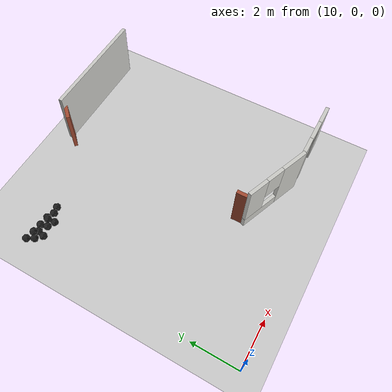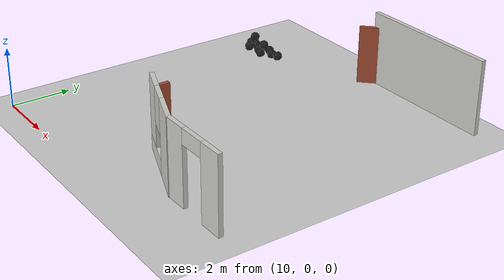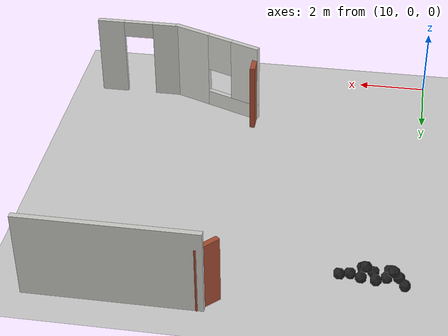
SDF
<sdf version="1.7">
 <world name="default">
  <model name="ground_plane">
   <static>1</static>
   <link name="link">
    <collision name="collision">
     <geometry><plane><normal>0 0 1</normal><size>100 100</size></plane></geometry>
     <surface><friction><ode><mu>100</mu><mu2>50</mu2></ode></friction></surface>
    </collision>
    <visual name="visual">
     <cast_shadows>0</cast_shadows>
     <geometry><plane><normal>0 0 1</normal><size>100 100</size></plane></geometry>
     <material>
      <script><uri>file://media/materials/scripts/gazebo.material</uri><name>Gazebo/Grey</name></script>
     </material>
    </visual>
   </link>
  </model>
  <model name="haoduomiantiaa_27">
   <link name="link_0">
    <inertial>
     <mass>0.2</mass>
     <inertia>
      <ixx>0.166667</ixx>
      <ixy>0</ixy>
      <ixz>0</ixz>
      <iyy>0.166667</iyy>
      <iyz>0</iyz>
      <izz>0.166667</izz>
     </inertia>
    </inertial>
    <visual name="visual">
     <geometry>
      <mesh>
       <uri>/home/lihaoyang/catkin_ws/src/pudong_gazebo/world/stl/haoduomianti.stl</uri>
       <scale>1 1 1</scale>
      </mesh>
     </geometry>
     <material>
      <lighting>1</lighting>
      <script><uri>file://media/materials/scripts/gazebo.material</uri><name>Gazebo/Black</name></script>
      <shader type="pixel"><normal_map>__default__</normal_map></shader>
      <ambient>0.3 0.3 0.3 1</ambient>
      <diffuse>0.7 0.7 0.7 1</diffuse>
      <specular>0.01 0.01 0.01 1</specular>
      <emissive>0 0 0 1</emissive>
     </material>
    </visual>
    <collision name="collision">
     <geometry>
      <mesh>
       <uri>/home/lihaoyang/catkin_ws/src/pudong_gazebo/world/stl/haoduomianti.stl</uri>
       <scale>1 1 1</scale>
      </mesh>
     </geometry>
     <surface>
      <friction>
       <ode><mu>1</mu><mu2>1</mu2><fdir1>0 0 0</fdir1><slip1>0</slip1><slip2>0</slip2></ode>
       <torsional>
        <coefficient>1</coefficient>
        <patch_radius>0</patch_radius>
        <surface_radius>0</surface_radius>
        <use_patch_radius>1</use_patch_radius>
        <ode><slip>0</slip></ode>
       </torsional>
      </friction>
      <bounce><restitution_coefficient>0</restitution_coefficient><threshold>1e+06</threshold></bounce>
      <contact>
       <collide_without_contact>0</collide_without_contact>
       <collide_without_contact_bitmask>1</collide_without_contact_bitmask>
       <collide_bitmask>1</collide_bitmask>
       <ode>
        <soft_cfm>0</soft_cfm>
        <soft_erp>0.2</soft_erp>
        <kp>1e+13</kp>
        <kd>1</kd>
        <max_vel>0.01</max_vel>
        <min_depth>0</min_depth>
       </ode>
       <bullet>
        <split_impulse>1</split_impulse>
        <split_impulse_penetration_threshold>-0.01</split_impulse_penetration_threshold>
        <soft_cfm>0</soft_cfm>
        <soft_erp>0.2</soft_erp>
        <kp>1e+13</kp>
        <kd>1</kd>
       </bullet>
      </contact>
     </surface>
    </collision>
   </link>
   <static>0</static>
   <pose>11.9512 9.19481 -0.115514 0.785343 -0.615512 -0.39803</pose>
  </model>
  <model name="haoduomiantiaa_36">
   <link name="link_0">
    <inertial>
     <mass>0.2</mass>
     <inertia>
      <ixx>0.166667</ixx>
      <ixy>0</ixy>
      <ixz>0</ixz>
      <iyy>0.166667</iyy>
      <iyz>0</iyz>
      <izz>0.166667</izz>
     </inertia>
    </inertial>
    <visual name="visual">
     <geometry>
      <mesh>
       <uri>/home/lihaoyang/catkin_ws/src/pudong_gazebo/world/stl/haoduomianti.stl</uri>
       <scale>1 1 1</scale>
      </mesh>
     </geometry>
     <material>
      <lighting>1</lighting>
      <script><uri>file://media/materials/scripts/gazebo.material</uri><name>Gazebo/Black</name></script>
      <shader type="pixel"><normal_map>__default__</normal_map></shader>
      <ambient>0.3 0.3 0.3 1</ambient>
      <diffuse>0.7 0.7 0.7 1</diffuse>
      <specular>0.01 0.01 0.01 1</specular>
      <emissive>0 0 0 1</emissive>
     </material>
    </visual>
    <collision name="collision">
     <geometry>
      <mesh>
       <uri>/home/lihaoyang/catkin_ws/src/pudong_gazebo/world/stl/haoduomianti.stl</uri>
       <scale>1 1 1</scale>
      </mesh>
     </geometry>
     <surface>
      <friction>
       <ode><mu>1</mu><mu2>1</mu2><fdir1>0 0 0</fdir1><slip1>0</slip1><slip2>0</slip2></ode>
       <torsional>
        <coefficient>1</coefficient>
        <patch_radius>0</patch_radius>
        <surface_radius>0</surface_radius>
        <use_patch_radius>1</use_patch_radius>
        <ode><slip>0</slip></ode>
       </torsional>
      </friction>
      <bounce><restitution_coefficient>0</restitution_coefficient><threshold>1e+06</threshold></bounce>
      <contact>
       <collide_without_contact>0</collide_without_contact>
       <collide_without_contact_bitmask>1</collide_without_contact_bitmask>
       <collide_bitmask>1</collide_bitmask>
       <ode>
        <soft_cfm>0</soft_cfm>
        <soft_erp>0.2</soft_erp>
        <kp>1e+13</kp>
        <kd>1</kd>
        <max_vel>0.01</max_vel>
        <min_depth>0</min_depth>
       </ode>
       <bullet>
        <split_impulse>1</split_impulse>
        <split_impulse_penetration_threshold>-0.01</split_impulse_penetration_threshold>
        <soft_cfm>0</soft_cfm>
        <soft_erp>0.2</soft_erp>
        <kp>1e+13</kp>
        <kd>1</kd>
       </bullet>
      </contact>
     </surface>
    </collision>
   </link>
   <static>0</static>
   <pose>11.3353 9.1112 0.110979 0.832679 -0.391683 -2.45242</pose>
  </model>
  <model name="haoduomiantiaa_40">
   <link name="link_0">
    <inertial>
     <mass>0.2</mass>
     <inertia>
      <ixx>0.166667</ixx>
      <ixy>0</ixy>
      <ixz>0</ixz>
      <iyy>0.166667</iyy>
      <iyz>0</iyz>
      <izz>0.166667</izz>
     </inertia>
    </inertial>
    <visual name="visual">
     <geometry>
      <mesh>
       <uri>/home/lihaoyang/catkin_ws/src/pudong_gazebo/world/stl/haoduomianti.stl</uri>
       <scale>1 1 1</scale>
      </mesh>
     </geometry>
     <material>
      <lighting>1</lighting>
      <script><uri>file://media/materials/scripts/gazebo.material</uri><name>Gazebo/Black</name></script>
      <shader type="pixel"><normal_map>__default__</normal_map></shader>
      <ambient>0.3 0.3 0.3 1</ambient>
      <diffuse>0.7 0.7 0.7 1</diffuse>
      <specular>0.01 0.01 0.01 1</specular>
      <emissive>0 0 0 1</emissive>
     </material>
    </visual>
    <collision name="collision">
     <geometry>
      <mesh>
       <uri>/home/lihaoyang/catkin_ws/src/pudong_gazebo/world/stl/haoduomianti.stl</uri>
       <scale>1 1 1</scale>
      </mesh>
     </geometry>
     <surface>
      <friction>
       <ode><mu>1</mu><mu2>1</mu2><fdir1>0 0 0</fdir1><slip1>0</slip1><slip2>0</slip2></ode>
       <torsional>
        <coefficient>1</coefficient>
        <patch_radius>0</patch_radius>
        <surface_radius>0</surface_radius>
        <use_patch_radius>1</use_patch_radius>
        <ode><slip>0</slip></ode>
       </torsional>
      </friction>
      <bounce><restitution_coefficient>0</restitution_coefficient><threshold>1e+06</threshold></bounce>
      <contact>
       <collide_without_contact>0</collide_without_contact>
       <collide_without_contact_bitmask>1</collide_without_contact_bitmask>
       <collide_bitmask>1</collide_bitmask>
       <ode>
        <soft_cfm>0</soft_cfm>
        <soft_erp>0.2</soft_erp>
        <kp>1e+13</kp>
        <kd>1</kd>
        <max_vel>0.01</max_vel>
        <min_depth>0</min_depth>
       </ode>
       <bullet>
        <split_impulse>1</split_impulse>
        <split_impulse_penetration_threshold>-0.01</split_impulse_penetration_threshold>
        <soft_cfm>0</soft_cfm>
        <soft_erp>0.2</soft_erp>
        <kp>1e+13</kp>
        <kd>1</kd>
       </bullet>
      </contact>
     </surface>
    </collision>
   </link>
   <static>0</static>
   <pose>10.4197 9.12789 -0.115437 0.785402 -0.614458 0.79415</pose>
  </model>
  <model name="haoduomiantiaa_41">
   <link name="link_0">
    <inertial>
     <mass>0.2</mass>
     <inertia>
      <ixx>0.166667</ixx>
      <ixy>0</ixy>
      <ixz>0</ixz>
      <iyy>0.166667</iyy>
      <iyz>0</iyz>
      <izz>0.166667</izz>
     </inertia>
    </inertial>
    <visual name="visual">
     <geometry>
      <mesh>
       <uri>/home/lihaoyang/catkin_ws/src/pudong_gazebo/world/stl/haoduomianti.stl</uri>
       <scale>1 1 1</scale>
      </mesh>
     </geometry>
     <material>
      <lighting>1</lighting>
      <script><uri>file://media/materials/scripts/gazebo.material</uri><name>Gazebo/Black</name></script>
      <shader type="pixel"><normal_map>__default__</normal_map></shader>
      <ambient>0.3 0.3 0.3 1</ambient>
      <diffuse>0.7 0.7 0.7 1</diffuse>
      <specular>0.01 0.01 0.01 1</specular>
      <emissive>0 0 0 1</emissive>
     </material>
    </visual>
    <collision name="collision">
     <geometry>
      <mesh>
       <uri>/home/lihaoyang/catkin_ws/src/pudong_gazebo/world/stl/haoduomianti.stl</uri>
       <scale>1 1 1</scale>
      </mesh>
     </geometry>
     <surface>
      <friction>
       <ode><mu>1</mu><mu2>1</mu2><fdir1>0 0 0</fdir1><slip1>0</slip1><slip2>0</slip2></ode>
       <torsional>
        <coefficient>1</coefficient>
        <patch_radius>0</patch_radius>
        <surface_radius>0</surface_radius>
        <use_patch_radius>1</use_patch_radius>
        <ode><slip>0</slip></ode>
       </torsional>
      </friction>
      <bounce><restitution_coefficient>0</restitution_coefficient><threshold>1e+06</threshold></bounce>
      <contact>
       <collide_without_contact>0</collide_without_contact>
       <collide_without_contact_bitmask>1</collide_without_contact_bitmask>
       <collide_bitmask>1</collide_bitmask>
       <ode>
        <soft_cfm>0</soft_cfm>
        <soft_erp>0.2</soft_erp>
        <kp>1e+13</kp>
        <kd>1</kd>
        <max_vel>0.01</max_vel>
        <min_depth>0</min_depth>
       </ode>
       <bullet>
        <split_impulse>1</split_impulse>
        <split_impulse_penetration_threshold>-0.01</split_impulse_penetration_threshold>
        <soft_cfm>0</soft_cfm>
        <soft_erp>0.2</soft_erp>
        <kp>1e+13</kp>
        <kd>1</kd>
       </bullet>
      </contact>
     </surface>
    </collision>
   </link>
   <static>0</static>
   <pose>11.0076 9.2952 -0.124232 0.783951 -0.615619 -2.4835</pose>
  </model>
  <model name="haoduomiantiaa_45">
   <link name="link_0">
    <inertial>
     <mass>0.2</mass>
     <inertia>
      <ixx>0.166667</ixx>
      <ixy>0</ixy>
      <ixz>0</ixz>
      <iyy>0.166667</iyy>
      <iyz>0</iyz>
      <izz>0.166667</izz>
     </inertia>
    </inertial>
    <visual name="visual">
     <geometry>
      <mesh>
       <uri>/home/lihaoyang/catkin_ws/src/pudong_gazebo/world/stl/haoduomianti.stl</uri>
       <scale>1 1 1</scale>
      </mesh>
     </geometry>
     <material>
      <lighting>1</lighting>
      <script><uri>file://media/materials/scripts/gazebo.material</uri><name>Gazebo/Black</name></script>
      <shader type="pixel"><normal_map>__default__</normal_map></shader>
      <ambient>0.3 0.3 0.3 1</ambient>
      <diffuse>0.7 0.7 0.7 1</diffuse>
      <specular>0.01 0.01 0.01 1</specular>
      <emissive>0 0 0 1</emissive>
     </material>
    </visual>
    <collision name="collision">
     <geometry>
      <mesh>
       <uri>/home/lihaoyang/catkin_ws/src/pudong_gazebo/world/stl/haoduomianti.stl</uri>
       <scale>1 1 1</scale>
      </mesh>
     </geometry>
     <surface>
      <friction>
       <ode><mu>1</mu><mu2>1</mu2><fdir1>0 0 0</fdir1><slip1>0</slip1><slip2>0</slip2></ode>
       <torsional>
        <coefficient>1</coefficient>
        <patch_radius>0</patch_radius>
        <surface_radius>0</surface_radius>
        <use_patch_radius>1</use_patch_radius>
        <ode><slip>0</slip></ode>
       </torsional>
      </friction>
      <bounce><restitution_coefficient>0</restitution_coefficient><threshold>1e+06</threshold></bounce>
      <contact>
       <collide_without_contact>0</collide_without_contact>
       <collide_without_contact_bitmask>1</collide_without_contact_bitmask>
       <collide_bitmask>1</collide_bitmask>
       <ode>
        <soft_cfm>0</soft_cfm>
        <soft_erp>0.2</soft_erp>
        <kp>1e+13</kp>
        <kd>1</kd>
        <max_vel>0.01</max_vel>
        <min_depth>0</min_depth>
       </ode>
       <bullet>
        <split_impulse>1</split_impulse>
        <split_impulse_penetration_threshold>-0.01</split_impulse_penetration_threshold>
        <soft_cfm>0</soft_cfm>
        <soft_erp>0.2</soft_erp>
        <kp>1e+13</kp>
        <kd>1</kd>
       </bullet>
      </contact>
     </surface>
    </collision>
   </link>
   <static>0</static>
   <pose>10.7345 9.17357 -0.115514 0.785402 -0.615465 1.6502</pose>
  </model>
  <model name="haoduomiantiaa_47">
   <link name="link_0">
    <inertial>
     <mass>0.2</mass>
     <inertia>
      <ixx>0.166667</ixx>
      <ixy>0</ixy>
      <ixz>0</ixz>
      <iyy>0.166667</iyy>
      <iyz>0</iyz>
      <izz>0.166667</izz>
     </inertia>
    </inertial>
    <visual name="visual">
     <geometry>
      <mesh>
       <uri>/home/lihaoyang/catkin_ws/src/pudong_gazebo/world/stl/haoduomianti.stl</uri>
       <scale>1 1 1</scale>
      </mesh>
     </geometry>
     <material>
      <lighting>1</lighting>
      <script><uri>file://media/materials/scripts/gazebo.material</uri><name>Gazebo/Black</name></script>
      <shader type="pixel"><normal_map>__default__</normal_map></shader>
      <ambient>0.3 0.3 0.3 1</ambient>
      <diffuse>0.7 0.7 0.7 1</diffuse>
      <specular>0.01 0.01 0.01 1</specular>
      <emissive>0 0 0 1</emissive>
     </material>
    </visual>
    <collision name="collision">
     <geometry>
      <mesh>
       <uri>/home/lihaoyang/catkin_ws/src/pudong_gazebo/world/stl/haoduomianti.stl</uri>
       <scale>1 1 1</scale>
      </mesh>
     </geometry>
     <surface>
      <friction>
       <ode><mu>1</mu><mu2>1</mu2><fdir1>0 0 0</fdir1><slip1>0</slip1><slip2>0</slip2></ode>
       <torsional>
        <coefficient>1</coefficient>
        <patch_radius>0</patch_radius>
        <surface_radius>0</surface_radius>
        <use_patch_radius>1</use_patch_radius>
        <ode><slip>0</slip></ode>
       </torsional>
      </friction>
      <bounce><restitution_coefficient>0</restitution_coefficient><threshold>1e+06</threshold></bounce>
      <contact>
       <collide_without_contact>0</collide_without_contact>
       <collide_without_contact_bitmask>1</collide_without_contact_bitmask>
       <collide_bitmask>1</collide_bitmask>
       <ode>
        <soft_cfm>0</soft_cfm>
        <soft_erp>0.2</soft_erp>
        <kp>1e+13</kp>
        <kd>1</kd>
        <max_vel>0.01</max_vel>
        <min_depth>0</min_depth>
       </ode>
       <bullet>
        <split_impulse>1</split_impulse>
        <split_impulse_penetration_threshold>-0.01</split_impulse_penetration_threshold>
        <soft_cfm>0</soft_cfm>
        <soft_erp>0.2</soft_erp>
        <kp>1e+13</kp>
        <kd>1</kd>
       </bullet>
      </contact>
     </surface>
    </collision>
   </link>
   <static>0</static>
   <pose>11.675 9.13589 -0.116135 0.786034 -0.614802 -0.398273</pose>
  </model>
  <model name="haoduomiantiaa_71">
   <link name="link_0">
    <inertial>
     <mass>0.2</mass>
     <inertia>
      <ixx>0.166667</ixx>
      <ixy>0</ixy>
      <ixz>0</ixz>
      <iyy>0.166667</iyy>
      <iyz>0</iyz>
      <izz>0.166667</izz>
     </inertia>
    </inertial>
    <visual name="visual">
     <geometry>
      <mesh>
       <uri>/home/lihaoyang/catkin_ws/src/pudong_gazebo/world/stl/haoduomianti.stl</uri>
       <scale>1 1 1</scale>
      </mesh>
     </geometry>
     <material>
      <lighting>1</lighting>
      <script><uri>file://media/materials/scripts/gazebo.material</uri><name>Gazebo/Black</name></script>
      <shader type="pixel"><normal_map>__default__</normal_map></shader>
      <ambient>0.3 0.3 0.3 1</ambient>
      <diffuse>0.7 0.7 0.7 1</diffuse>
      <specular>0.01 0.01 0.01 1</specular>
      <emissive>0 0 0 1</emissive>
     </material>
    </visual>
    <collision name="collision">
     <geometry>
      <mesh>
       <uri>/home/lihaoyang/catkin_ws/src/pudong_gazebo/world/stl/haoduomianti.stl</uri>
       <scale>1 1 1</scale>
      </mesh>
     </geometry>
     <surface>
      <friction>
       <ode><mu>1</mu><mu2>1</mu2><fdir1>0 0 0</fdir1><slip1>0</slip1><slip2>0</slip2></ode>
       <torsional>
        <coefficient>1</coefficient>
        <patch_radius>0</patch_radius>
        <surface_radius>0</surface_radius>
        <use_patch_radius>1</use_patch_radius>
        <ode><slip>0</slip></ode>
       </torsional>
      </friction>
      <bounce><restitution_coefficient>0</restitution_coefficient><threshold>1e+06</threshold></bounce>
      <contact>
       <collide_without_contact>0</collide_without_contact>
       <collide_without_contact_bitmask>1</collide_without_contact_bitmask>
       <collide_bitmask>1</collide_bitmask>
       <ode>
        <soft_cfm>0</soft_cfm>
        <soft_erp>0.2</soft_erp>
        <kp>1e+13</kp>
        <kd>1</kd>
        <max_vel>0.01</max_vel>
        <min_depth>0</min_depth>
       </ode>
       <bullet>
        <split_impulse>1</split_impulse>
        <split_impulse_penetration_threshold>-0.01</split_impulse_penetration_threshold>
        <soft_cfm>0</soft_cfm>
        <soft_erp>0.2</soft_erp>
        <kp>1e+13</kp>
        <kd>1</kd>
       </bullet>
      </contact>
     </surface>
    </collision>
   </link>
   <static>0</static>
   <pose>10.5878 9.19495 0.142271 0.666379 -0.617937 0.981094</pose>
  </model>
  <model name="haoduomiantiaa_74">
   <link name="link_0">
    <inertial>
     <mass>0.2</mass>
     <inertia>
      <ixx>0.166667</ixx>
      <ixy>0</ixy>
      <ixz>0</ixz>
      <iyy>0.166667</iyy>
      <iyz>0</iyz>
      <izz>0.166667</izz>
     </inertia>
    </inertial>
    <visual name="visual">
     <geometry>
      <mesh>
       <uri>/home/lihaoyang/catkin_ws/src/pudong_gazebo/world/stl/haoduomianti.stl</uri>
       <scale>1 1 1</scale>
      </mesh>
     </geometry>
     <material>
      <lighting>1</lighting>
      <script><uri>file://media/materials/scripts/gazebo.material</uri><name>Gazebo/Black</name></script>
      <shader type="pixel"><normal_map>__default__</normal_map></shader>
      <ambient>0.3 0.3 0.3 1</ambient>
      <diffuse>0.7 0.7 0.7 1</diffuse>
      <specular>0.01 0.01 0.01 1</specular>
      <emissive>0 0 0 1</emissive>
     </material>
    </visual>
    <collision name="collision">
     <geometry>
      <mesh>
       <uri>/home/lihaoyang/catkin_ws/src/pudong_gazebo/world/stl/haoduomianti.stl</uri>
       <scale>1 1 1</scale>
      </mesh>
     </geometry>
     <surface>
      <friction>
       <ode><mu>1</mu><mu2>1</mu2><fdir1>0 0 0</fdir1><slip1>0</slip1><slip2>0</slip2></ode>
       <torsional>
        <coefficient>1</coefficient>
        <patch_radius>0</patch_radius>
        <surface_radius>0</surface_radius>
        <use_patch_radius>1</use_patch_radius>
        <ode><slip>0</slip></ode>
       </torsional>
      </friction>
      <bounce><restitution_coefficient>0</restitution_coefficient><threshold>1e+06</threshold></bounce>
      <contact>
       <collide_without_contact>0</collide_without_contact>
       <collide_without_contact_bitmask>1</collide_without_contact_bitmask>
       <collide_bitmask>1</collide_bitmask>
       <ode>
        <soft_cfm>0</soft_cfm>
        <soft_erp>0.2</soft_erp>
        <kp>1e+13</kp>
        <kd>1</kd>
        <max_vel>0.01</max_vel>
        <min_depth>0</min_depth>
       </ode>
       <bullet>
        <split_impulse>1</split_impulse>
        <split_impulse_penetration_threshold>-0.01</split_impulse_penetration_threshold>
        <soft_cfm>0</soft_cfm>
        <soft_erp>0.2</soft_erp>
        <kp>1e+13</kp>
        <kd>1</kd>
       </bullet>
      </contact>
     </surface>
    </collision>
   </link>
   <static>0</static>
   <pose>11.0795 9.00203 -0.115611 0.785089 -0.610946 1.47418</pose>
  </model>
  <model name="haoduomiantiaa_80">
   <link name="link_0">
    <inertial>
     <mass>0.2</mass>
     <inertia>
      <ixx>0.166667</ixx>
      <ixy>0</ixy>
      <ixz>0</ixz>
      <iyy>0.166667</iyy>
      <iyz>0</iyz>
      <izz>0.166667</izz>
     </inertia>
    </inertial>
    <visual name="visual">
     <geometry>
      <mesh>
       <uri>/home/lihaoyang/catkin_ws/src/pudong_gazebo/world/stl/haoduomianti.stl</uri>
       <scale>1 1 1</scale>
      </mesh>
     </geometry>
     <material>
      <lighting>1</lighting>
      <script><uri>file://media/materials/scripts/gazebo.material</uri><name>Gazebo/Black</name></script>
      <shader type="pixel"><normal_map>__default__</normal_map></shader>
      <ambient>0.3 0.3 0.3 1</ambient>
      <diffuse>0.7 0.7 0.7 1</diffuse>
      <specular>0.01 0.01 0.01 1</specular>
      <emissive>0 0 0 1</emissive>
     </material>
    </visual>
    <collision name="collision">
     <geometry>
      <mesh>
       <uri>/home/lihaoyang/catkin_ws/src/pudong_gazebo/world/stl/haoduomianti.stl</uri>
       <scale>1 1 1</scale>
      </mesh>
     </geometry>
     <surface>
      <friction>
       <ode><mu>1</mu><mu2>1</mu2><fdir1>0 0 0</fdir1><slip1>0</slip1><slip2>0</slip2></ode>
       <torsional>
        <coefficient>1</coefficient>
        <patch_radius>0</patch_radius>
        <surface_radius>0</surface_radius>
        <use_patch_radius>1</use_patch_radius>
        <ode><slip>0</slip></ode>
       </torsional>
      </friction>
      <bounce><restitution_coefficient>0</restitution_coefficient><threshold>1e+06</threshold></bounce>
      <contact>
       <collide_without_contact>0</collide_without_contact>
       <collide_without_contact_bitmask>1</collide_without_contact_bitmask>
       <collide_bitmask>1</collide_bitmask>
       <ode>
        <soft_cfm>0</soft_cfm>
        <soft_erp>0.2</soft_erp>
        <kp>1e+13</kp>
        <kd>1</kd>
        <max_vel>0.01</max_vel>
        <min_depth>0</min_depth>
       </ode>
       <bullet>
        <split_impulse>1</split_impulse>
        <split_impulse_penetration_threshold>-0.01</split_impulse_penetration_threshold>
        <soft_cfm>0</soft_cfm>
        <soft_erp>0.2</soft_erp>
        <kp>1e+13</kp>
        <kd>1</kd>
       </bullet>
      </contact>
     </surface>
    </collision>
   </link>
   <static>0</static>
   <pose>11.3936 9.25931 -0.114899 0.773861 -0.622118 1.48486</pose>
  </model>
  <model name="haoduomiantiaa_91">
   <link name="link_0">
    <inertial>
     <mass>0.2</mass>
     <inertia>
      <ixx>0.166667</ixx>
      <ixy>0</ixy>
      <ixz>0</ixz>
      <iyy>0.166667</iyy>
      <iyz>0</iyz>
      <izz>0.166667</izz>
     </inertia>
    </inertial>
    <visual name="visual">
     <geometry>
      <mesh>
       <uri>/home/lihaoyang/catkin_ws/src/pudong_gazebo/world/stl/haoduomianti.stl</uri>
       <scale>1 1 1</scale>
      </mesh>
     </geometry>
     <material>
      <lighting>1</lighting>
      <script><uri>file://media/materials/scripts/gazebo.material</uri><name>Gazebo/Black</name></script>
      <shader type="pixel"><normal_map>__default__</normal_map></shader>
      <ambient>0.3 0.3 0.3 1</ambient>
      <diffuse>0.7 0.7 0.7 1</diffuse>
      <specular>0.01 0.01 0.01 1</specular>
      <emissive>0 0 0 1</emissive>
     </material>
    </visual>
    <collision name="collision">
     <geometry>
      <mesh>
       <uri>/home/lihaoyang/catkin_ws/src/pudong_gazebo/world/stl/haoduomianti.stl</uri>
       <scale>1 1 1</scale>
      </mesh>
     </geometry>
     <surface>
      <friction>
       <ode><mu>1</mu><mu2>1</mu2><fdir1>0 0 0</fdir1><slip1>0</slip1><slip2>0</slip2></ode>
       <torsional>
        <coefficient>1</coefficient>
        <patch_radius>0</patch_radius>
        <surface_radius>0</surface_radius>
        <use_patch_radius>1</use_patch_radius>
        <ode><slip>0</slip></ode>
       </torsional>
      </friction>
      <bounce><restitution_coefficient>0</restitution_coefficient><threshold>1e+06</threshold></bounce>
      <contact>
       <collide_without_contact>0</collide_without_contact>
       <collide_without_contact_bitmask>1</collide_without_contact_bitmask>
       <collide_bitmask>1</collide_bitmask>
       <ode>
        <soft_cfm>0</soft_cfm>
        <soft_erp>0.2</soft_erp>
        <kp>1e+13</kp>
        <kd>1</kd>
        <max_vel>0.01</max_vel>
        <min_depth>0</min_depth>
       </ode>
       <bullet>
        <split_impulse>1</split_impulse>
        <split_impulse_penetration_threshold>-0.01</split_impulse_penetration_threshold>
        <soft_cfm>0</soft_cfm>
        <soft_erp>0.2</soft_erp>
        <kp>1e+13</kp>
        <kd>1</kd>
       </bullet>
      </contact>
     </surface>
    </collision>
   </link>
   <static>0</static>
   <pose>11.3615 8.87284 -0.115454 0.785403 -0.615104 2.16348</pose>
  </model>
  <model name="haoduomiantiaa_117">
   <link name="link_0">
    <inertial>
     <mass>0.2</mass>
     <inertia>
      <ixx>0.166667</ixx>
      <ixy>0</ixy>
      <ixz>0</ixz>
      <iyy>0.166667</iyy>
      <iyz>0</iyz>
      <izz>0.166667</izz>
     </inertia>
    </inertial>
    <visual name="visual">
     <geometry>
      <mesh>
       <uri>/home/lihaoyang/catkin_ws/src/pudong_gazebo/world/stl/haoduomianti.stl</uri>
       <scale>1 1 1</scale>
      </mesh>
     </geometry>
     <material>
      <lighting>1</lighting>
      <script><uri>file://media/materials/scripts/gazebo.material</uri><name>Gazebo/Black</name></script>
      <shader type="pixel"><normal_map>__default__</normal_map></shader>
      <ambient>0.3 0.3 0.3 1</ambient>
      <diffuse>0.7 0.7 0.7 1</diffuse>
      <specular>0.01 0.01 0.01 1</specular>
      <emissive>0 0 0 1</emissive>
     </material>
    </visual>
    <collision name="collision">
     <geometry>
      <mesh>
       <uri>/home/lihaoyang/catkin_ws/src/pudong_gazebo/world/stl/haoduomianti.stl</uri>
       <scale>1 1 1</scale>
      </mesh>
     </geometry>
     <surface>
      <friction>
       <ode><mu>1</mu><mu2>1</mu2><fdir1>0 0 0</fdir1><slip1>0</slip1><slip2>0</slip2></ode>
       <torsional>
        <coefficient>1</coefficient>
        <patch_radius>0</patch_radius>
        <surface_radius>0</surface_radius>
        <use_patch_radius>1</use_patch_radius>
        <ode><slip>0</slip></ode>
       </torsional>
      </friction>
      <bounce><restitution_coefficient>0</restitution_coefficient><threshold>1e+06</threshold></bounce>
      <contact>
       <collide_without_contact>0</collide_without_contact>
       <collide_without_contact_bitmask>1</collide_without_contact_bitmask>
       <collide_bitmask>1</collide_bitmask>
       <ode>
        <soft_cfm>0</soft_cfm>
        <soft_erp>0.2</soft_erp>
        <kp>1e+13</kp>
        <kd>1</kd>
        <max_vel>0.01</max_vel>
        <min_depth>0</min_depth>
       </ode>
       <bullet>
        <split_impulse>1</split_impulse>
        <split_impulse_penetration_threshold>-0.01</split_impulse_penetration_threshold>
        <soft_cfm>0</soft_cfm>
        <soft_erp>0.2</soft_erp>
        <kp>1e+13</kp>
        <kd>1</kd>
       </bullet>
      </contact>
     </surface>
    </collision>
   </link>
   <static>0</static>
   <pose>10.6627 8.89098 -0.115363 0.785891 -0.613557 -2.45215</pose>
  </model>
  <model name="haoduomiantiaa_118">
   <link name="link_0">
    <inertial>
     <mass>0.2</mass>
     <inertia>
      <ixx>0.166667</ixx>
      <ixy>0</ixy>
      <ixz>0</ixz>
      <iyy>0.166667</iyy>
      <iyz>0</iyz>
      <izz>0.166667</izz>
     </inertia>
    </inertial>
    <visual name="visual">
     <geometry>
      <mesh>
       <uri>/home/lihaoyang/catkin_ws/src/pudong_gazebo/world/stl/haoduomianti.stl</uri>
       <scale>1 1 1</scale>
      </mesh>
     </geometry>
     <material>
      <lighting>1</lighting>
      <script><uri>file://media/materials/scripts/gazebo.material</uri><name>Gazebo/Black</name></script>
      <shader type="pixel"><normal_map>__default__</normal_map></shader>
      <ambient>0.3 0.3 0.3 1</ambient>
      <diffuse>0.7 0.7 0.7 1</diffuse>
      <specular>0.01 0.01 0.01 1</specular>
      <emissive>0 0 0 1</emissive>
     </material>
    </visual>
    <collision name="collision">
     <geometry>
      <mesh>
       <uri>/home/lihaoyang/catkin_ws/src/pudong_gazebo/world/stl/haoduomianti.stl</uri>
       <scale>1 1 1</scale>
      </mesh>
     </geometry>
     <surface>
      <friction>
       <ode><mu>1</mu><mu2>1</mu2><fdir1>0 0 0</fdir1><slip1>0</slip1><slip2>0</slip2></ode>
       <torsional>
        <coefficient>1</coefficient>
        <patch_radius>0</patch_radius>
        <surface_radius>0</surface_radius>
        <use_patch_radius>1</use_patch_radius>
        <ode><slip>0</slip></ode>
       </torsional>
      </friction>
      <bounce><restitution_coefficient>0</restitution_coefficient><threshold>1e+06</threshold></bounce>
      <contact>
       <collide_without_contact>0</collide_without_contact>
       <collide_without_contact_bitmask>1</collide_without_contact_bitmask>
       <collide_bitmask>1</collide_bitmask>
       <ode>
        <soft_cfm>0</soft_cfm>
        <soft_erp>0.2</soft_erp>
        <kp>1e+13</kp>
        <kd>1</kd>
        <max_vel>0.01</max_vel>
        <min_depth>0</min_depth>
       </ode>
       <bullet>
        <split_impulse>1</split_impulse>
        <split_impulse_penetration_threshold>-0.01</split_impulse_penetration_threshold>
        <soft_cfm>0</soft_cfm>
        <soft_erp>0.2</soft_erp>
        <kp>1e+13</kp>
        <kd>1</kd>
       </bullet>
      </contact>
     </surface>
    </collision>
   </link>
   <static>0</static>
   <pose>10.2608 9.41029 -0.115438 0.785424 -0.614496 2.55558</pose>
  </model>
  <model name="aim_area">
   <link name="Wall_10">
    <pose>6.351 -3.13846 0 0 -0 2.76762</pose>
    <visual name="Wall_10_Visual_1">
     <pose>0.58795 0 0.25 0 -0 0</pose>
     <geometry><box><size>1.70589 0.15 0.5</size></box></geometry>
     <material>
      <script><uri>file://media/materials/scripts/gazebo.material</uri><name>Gazebo/CeilingTiled</name></script>
      <ambient>1 1 1 1</ambient>
      <shader type="pixel"/>
     </material>
     <meta><layer>0</layer></meta>
    </visual>
    <visual name="Wall_10_Visual_0">
     <pose>-0.852943 0 1.25 0 -0 0</pose>
     <geometry><box><size>1.1759 0.15 2.5</size></box></geometry>
     <material>
      <script><uri>file://media/materials/scripts/gazebo.material</uri><name>Gazebo/CeilingTiled</name></script>
      <ambient>1 1 1 1</ambient>
      <shader type="pixel"/>
     </material>
     <meta><layer>0</layer></meta>
    </visual>
    <visual name="Wall_10_Visual_3">
     <pose>0.135006 0 1.9 0 -0 0</pose>
     <geometry><box><size>0.8 0.15 1.2</size></box></geometry>
     <material>
      <script><uri>file://media/materials/scripts/gazebo.material</uri><name>Gazebo/CeilingTiled</name></script>
      <ambient>1 1 1 1</ambient>
      <shader type="pixel"/>
     </material>
     <meta><layer>0</layer></meta>
    </visual>
    <visual name="Wall_10_Visual_2">
     <pose>0.98795 0 1.5 0 -0 0</pose>
     <geometry><box><size>0.905886 0.15 2</size></box></geometry>
     <material>
      <script><uri>file://media/materials/scripts/gazebo.material</uri><name>Gazebo/CeilingTiled</name></script>
      <ambient>1 1 1 1</ambient>
      <shader type="pixel"/>
     </material>
     <meta><layer>0</layer></meta>
    </visual>
    <collision name="Wall_10_Collision_0">
     <pose>-0.852943 0 1.25 0 -0 0</pose>
     <geometry><box><size>1.1759 0.15 2.5</size></box></geometry>
     <surface>
      <friction>
       <ode><mu>1</mu><mu2>1</mu2><fdir1>0 0 0</fdir1><slip1>0</slip1><slip2>0</slip2></ode>
       <torsional>
        <coefficient>1</coefficient>
        <patch_radius>0</patch_radius>
        <surface_radius>0</surface_radius>
        <use_patch_radius>1</use_patch_radius>
        <ode><slip>0</slip></ode>
       </torsional>
      </friction>
      <bounce><restitution_coefficient>0</restitution_coefficient><threshold>1e+06</threshold></bounce>
      <contact>
       <collide_without_contact>0</collide_without_contact>
       <collide_without_contact_bitmask>1</collide_without_contact_bitmask>
       <collide_bitmask>1</collide_bitmask>
       <ode>
        <soft_cfm>0</soft_cfm>
        <soft_erp>0.2</soft_erp>
        <kp>1e+13</kp>
        <kd>1</kd>
        <max_vel>0.01</max_vel>
        <min_depth>0</min_depth>
       </ode>
       <bullet>
        <split_impulse>1</split_impulse>
        <split_impulse_penetration_threshold>-0.01</split_impulse_penetration_threshold>
        <soft_cfm>0</soft_cfm>
        <soft_erp>0.2</soft_erp>
        <kp>1e+13</kp>
        <kd>1</kd>
       </bullet>
      </contact>
     </surface>
    </collision>
    <collision name="Wall_10_Collision_1">
     <pose>0.58795 0 0.25 0 -0 0</pose>
     <geometry><box><size>1.70589 0.15 0.5</size></box></geometry>
     <surface>
      <friction>
       <ode><mu>1</mu><mu2>1</mu2><fdir1>0 0 0</fdir1><slip1>0</slip1><slip2>0</slip2></ode>
       <torsional>
        <coefficient>1</coefficient>
        <patch_radius>0</patch_radius>
        <surface_radius>0</surface_radius>
        <use_patch_radius>1</use_patch_radius>
        <ode><slip>0</slip></ode>
       </torsional>
      </friction>
      <bounce><restitution_coefficient>0</restitution_coefficient><threshold>1e+06</threshold></bounce>
      <contact>
       <collide_without_contact>0</collide_without_contact>
       <collide_without_contact_bitmask>1</collide_without_contact_bitmask>
       <collide_bitmask>1</collide_bitmask>
       <ode>
        <soft_cfm>0</soft_cfm>
        <soft_erp>0.2</soft_erp>
        <kp>1e+13</kp>
        <kd>1</kd>
        <max_vel>0.01</max_vel>
        <min_depth>0</min_depth>
       </ode>
       <bullet>
        <split_impulse>1</split_impulse>
        <split_impulse_penetration_threshold>-0.01</split_impulse_penetration_threshold>
        <soft_cfm>0</soft_cfm>
        <soft_erp>0.2</soft_erp>
        <kp>1e+13</kp>
        <kd>1</kd>
       </bullet>
      </contact>
     </surface>
    </collision>
    <collision name="Wall_10_Collision_2">
     <pose>0.98795 0 1.5 0 -0 0</pose>
     <geometry><box><size>0.905886 0.15 2</size></box></geometry>
     <surface>
      <friction>
       <ode><mu>1</mu><mu2>1</mu2><fdir1>0 0 0</fdir1><slip1>0</slip1><slip2>0</slip2></ode>
       <torsional>
        <coefficient>1</coefficient>
        <patch_radius>0</patch_radius>
        <surface_radius>0</surface_radius>
        <use_patch_radius>1</use_patch_radius>
        <ode><slip>0</slip></ode>
       </torsional>
      </friction>
      <bounce><restitution_coefficient>0</restitution_coefficient><threshold>1e+06</threshold></bounce>
      <contact>
       <collide_without_contact>0</collide_without_contact>
       <collide_without_contact_bitmask>1</collide_without_contact_bitmask>
       <collide_bitmask>1</collide_bitmask>
       <ode>
        <soft_cfm>0</soft_cfm>
        <soft_erp>0.2</soft_erp>
        <kp>1e+13</kp>
        <kd>1</kd>
        <max_vel>0.01</max_vel>
        <min_depth>0</min_depth>
       </ode>
       <bullet>
        <split_impulse>1</split_impulse>
        <split_impulse_penetration_threshold>-0.01</split_impulse_penetration_threshold>
        <soft_cfm>0</soft_cfm>
        <soft_erp>0.2</soft_erp>
        <kp>1e+13</kp>
        <kd>1</kd>
       </bullet>
      </contact>
     </surface>
    </collision>
    <collision name="Wall_10_Collision_3">
     <pose>0.135006 0 1.9 0 -0 0</pose>
     <geometry><box><size>0.8 0.15 1.2</size></box></geometry>
     <surface>
      <friction>
       <ode><mu>1</mu><mu2>1</mu2><fdir1>0 0 0</fdir1><slip1>0</slip1><slip2>0</slip2></ode>
       <torsional>
        <coefficient>1</coefficient>
        <patch_radius>0</patch_radius>
        <surface_radius>0</surface_radius>
        <use_patch_radius>1</use_patch_radius>
        <ode><slip>0</slip></ode>
       </torsional>
      </friction>
      <bounce><restitution_coefficient>0</restitution_coefficient><threshold>1e+06</threshold></bounce>
      <contact>
       <collide_without_contact>0</collide_without_contact>
       <collide_without_contact_bitmask>1</collide_without_contact_bitmask>
       <collide_bitmask>1</collide_bitmask>
       <ode>
        <soft_cfm>0</soft_cfm>
        <soft_erp>0.2</soft_erp>
        <kp>1e+13</kp>
        <kd>1</kd>
        <max_vel>0.01</max_vel>
        <min_depth>0</min_depth>
       </ode>
       <bullet>
        <split_impulse>1</split_impulse>
        <split_impulse_penetration_threshold>-0.01</split_impulse_penetration_threshold>
        <soft_cfm>0</soft_cfm>
        <soft_erp>0.2</soft_erp>
        <kp>1e+13</kp>
        <kd>1</kd>
       </bullet>
      </contact>
     </surface>
    </collision>
   </link>
   <link name="Wall_11">
    <pose>5.1147 -2.35573 0 0 -0 1.5708</pose>
    <inertial>
     <inertia><ixx>0</ixx><ixy>0</ixy><ixz>0</ixz><iyy>0</iyy><iyz>0</iyz><izz>0</izz></inertia>
     <mass>0</mass>
    </inertial>
    <visual name="Wall_11_Visual">
     <pose>0 0 1.05 0 -0 0</pose>
     <geometry><box><size>0.506266 0.15 2.1</size></box></geometry>
     <material>
      <script><uri>file://media/materials/scripts/gazebo.material</uri><name>Gazebo/Bricks</name></script>
      <ambient>1 1 1 1</ambient>
      <shader type="pixel"/>
     </material>
     <meta><layer>0</layer></meta>
    </visual>
    <collision name="Wall_11_Collision">
     <pose>0 0 1.05 0 -0 0</pose>
     <geometry><box><size>0.506266 0.15 2.1</size></box></geometry>
     <surface>
      <friction>
       <ode><mu>1</mu><mu2>1</mu2><fdir1>0 0 0</fdir1><slip1>0</slip1><slip2>0</slip2></ode>
       <torsional>
        <coefficient>1</coefficient>
        <patch_radius>0</patch_radius>
        <surface_radius>0</surface_radius>
        <use_patch_radius>1</use_patch_radius>
        <ode><slip>0</slip></ode>
       </torsional>
      </friction>
      <bounce><restitution_coefficient>0</restitution_coefficient><threshold>1e+06</threshold></bounce>
      <contact>
       <collide_without_contact>0</collide_without_contact>
       <collide_without_contact_bitmask>1</collide_without_contact_bitmask>
       <collide_bitmask>1</collide_bitmask>
       <ode>
        <soft_cfm>0</soft_cfm>
        <soft_erp>0.2</soft_erp>
        <kp>1e+13</kp>
        <kd>1</kd>
        <max_vel>0.01</max_vel>
        <min_depth>0</min_depth>
       </ode>
       <bullet>
        <split_impulse>1</split_impulse>
        <split_impulse_penetration_threshold>-0.01</split_impulse_penetration_threshold>
        <soft_cfm>0</soft_cfm>
        <soft_erp>0.2</soft_erp>
        <kp>1e+13</kp>
        <kd>1</kd>
       </bullet>
      </contact>
     </surface>
    </collision>
   </link>
   <link name="Wall_15">
    <pose>5.14614 5.66775 0 0 -0 0.786576</pose>
    <visual name="Wall_15_Visual">
     <pose>0 0 1 0 -0 0</pose>
     <geometry><box><size>0.75 0.15 2</size></box></geometry>
     <material>
      <script><uri>file://media/materials/scripts/gazebo.material</uri><name>Gazebo/Bricks</name></script>
      <ambient>1 1 1 1</ambient>
      <shader type="pixel"/>
     </material>
     <meta><layer>0</layer></meta>
    </visual>
    <collision name="Wall_15_Collision">
     <pose>0 0 1 0 -0 0</pose>
     <geometry><box><size>0.75 0.15 2</size></box></geometry>
     <surface>
      <friction>
       <ode><mu>1</mu><mu2>1</mu2><fdir1>0 0 0</fdir1><slip1>0</slip1><slip2>0</slip2></ode>
       <torsional>
        <coefficient>1</coefficient>
        <patch_radius>0</patch_radius>
        <surface_radius>0</surface_radius>
        <use_patch_radius>1</use_patch_radius>
        <ode><slip>0</slip></ode>
       </torsional>
      </friction>
      <bounce><restitution_coefficient>0</restitution_coefficient><threshold>1e+06</threshold></bounce>
      <contact>
       <collide_without_contact>0</collide_without_contact>
       <collide_without_contact_bitmask>1</collide_without_contact_bitmask>
       <collide_bitmask>1</collide_bitmask>
       <ode>
        <soft_cfm>0</soft_cfm>
        <soft_erp>0.2</soft_erp>
        <kp>1e+13</kp>
        <kd>1</kd>
        <max_vel>0.01</max_vel>
        <min_depth>0</min_depth>
       </ode>
       <bullet>
        <split_impulse>1</split_impulse>
        <split_impulse_penetration_threshold>-0.01</split_impulse_penetration_threshold>
        <soft_cfm>0</soft_cfm>
        <soft_erp>0.2</soft_erp>
        <kp>1e+13</kp>
        <kd>1</kd>
       </bullet>
      </contact>
     </surface>
    </collision>
   </link>
   <link name="Wall_17">
    <pose>7.54238 5.88204 0 0 0 -8.8e-05</pose>
    <visual name="Wall_17_Visual">
     <pose>0 0 1.25 0 -0 0</pose>
     <geometry><box><size>4.75 0.15 2.5</size></box></geometry>
     <material>
      <script><uri>file://media/materials/scripts/gazebo.material</uri><name>Gazebo/CeilingTiled</name></script>
      <ambient>1 1 1 1</ambient>
      <shader type="pixel"/>
     </material>
     <meta><layer>0</layer></meta>
    </visual>
    <collision name="Wall_17_Collision">
     <pose>0 0 1.25 0 -0 0</pose>
     <geometry><box><size>4.75 0.15 2.5</size></box></geometry>
     <surface>
      <friction>
       <ode><mu>1</mu><mu2>1</mu2><fdir1>0 0 0</fdir1><slip1>0</slip1><slip2>0</slip2></ode>
       <torsional>
        <coefficient>1</coefficient>
        <patch_radius>0</patch_radius>
        <surface_radius>0</surface_radius>
        <use_patch_radius>1</use_patch_radius>
        <ode><slip>0</slip></ode>
       </torsional>
      </friction>
      <bounce><restitution_coefficient>0</restitution_coefficient><threshold>1e+06</threshold></bounce>
      <contact>
       <collide_without_contact>0</collide_without_contact>
       <collide_without_contact_bitmask>1</collide_without_contact_bitmask>
       <collide_bitmask>1</collide_bitmask>
       <ode>
        <soft_cfm>0</soft_cfm>
        <soft_erp>0.2</soft_erp>
        <kp>1e+13</kp>
        <kd>1</kd>
        <max_vel>0.01</max_vel>
        <min_depth>0</min_depth>
       </ode>
       <bullet>
        <split_impulse>1</split_impulse>
        <split_impulse_penetration_threshold>-0.01</split_impulse_penetration_threshold>
        <soft_cfm>0</soft_cfm>
        <soft_erp>0.2</soft_erp>
        <kp>1e+13</kp>
        <kd>1</kd>
       </bullet>
      </contact>
     </surface>
    </collision>
   </link>
   <link name="Wall_7">
    <pose>8.8778 -3.63745 -0 0 -0 0</pose>
    <visual name="Wall_7_Visual_0">
     <pose>-0.857483 0 1.25 0 -0 0</pose>
     <geometry><box><size>0.785033 0.15 2.5</size></box></geometry>
     <material>
      <script><uri>file://media/materials/scripts/gazebo.material</uri><name>Gazebo/CeilingTiled</name></script>
      <ambient>1 1 1 1</ambient>
      <shader type="pixel"/>
     </material>
     <meta><layer>0</layer></meta>
    </visual>
    <visual name="Wall_7_Visual_1">
     <pose>0.842517 0 1.25 0 -0 0</pose>
     <geometry><box><size>0.814967 0.15 2.5</size></box></geometry>
     <material>
      <script><uri>file://media/materials/scripts/gazebo.material</uri><name>Gazebo/CeilingTiled</name></script>
      <ambient>1 1 1 1</ambient>
      <shader type="pixel"/>
     </material>
     <meta><layer>0</layer></meta>
    </visual>
    <visual name="Wall_7_Visual_2">
     <pose>-0.014967 0 2.25 0 -0 0</pose>
     <geometry><box><size>0.9 0.15 0.5</size></box></geometry>
     <material>
      <script><uri>file://media/materials/scripts/gazebo.material</uri><name>Gazebo/CeilingTiled</name></script>
      <ambient>1 1 1 1</ambient>
      <shader type="pixel"/>
     </material>
     <meta><layer>0</layer></meta>
    </visual>
    <collision name="Wall_7_Collision_0">
     <pose>-0.857483 0 1.25 0 -0 0</pose>
     <geometry><box><size>0.785033 0.15 2.5</size></box></geometry>
     <surface>
      <friction>
       <ode><mu>1</mu><mu2>1</mu2><fdir1>0 0 0</fdir1><slip1>0</slip1><slip2>0</slip2></ode>
       <torsional>
        <coefficient>1</coefficient>
        <patch_radius>0</patch_radius>
        <surface_radius>0</surface_radius>
        <use_patch_radius>1</use_patch_radius>
        <ode><slip>0</slip></ode>
       </torsional>
      </friction>
      <bounce><restitution_coefficient>0</restitution_coefficient><threshold>1e+06</threshold></bounce>
      <contact>
       <collide_without_contact>0</collide_without_contact>
       <collide_without_contact_bitmask>1</collide_without_contact_bitmask>
       <collide_bitmask>1</collide_bitmask>
       <ode>
        <soft_cfm>0</soft_cfm>
        <soft_erp>0.2</soft_erp>
        <kp>1e+13</kp>
        <kd>1</kd>
        <max_vel>0.01</max_vel>
        <min_depth>0</min_depth>
       </ode>
       <bullet>
        <split_impulse>1</split_impulse>
        <split_impulse_penetration_threshold>-0.01</split_impulse_penetration_threshold>
        <soft_cfm>0</soft_cfm>
        <soft_erp>0.2</soft_erp>
        <kp>1e+13</kp>
        <kd>1</kd>
       </bullet>
      </contact>
     </surface>
    </collision>
    <collision name="Wall_7_Collision_2">
     <pose>-0.014967 0 2.25 0 -0 0</pose>
     <geometry><box><size>0.9 0.15 0.5</size></box></geometry>
     <surface>
      <friction>
       <ode><mu>1</mu><mu2>1</mu2><fdir1>0 0 0</fdir1><slip1>0</slip1><slip2>0</slip2></ode>
       <torsional>
        <coefficient>1</coefficient>
        <patch_radius>0</patch_radius>
        <surface_radius>0</surface_radius>
        <use_patch_radius>1</use_patch_radius>
        <ode><slip>0</slip></ode>
       </torsional>
      </friction>
      <bounce><restitution_coefficient>0</restitution_coefficient><threshold>1e+06</threshold></bounce>
      <contact>
       <collide_without_contact>0</collide_without_contact>
       <collide_without_contact_bitmask>1</collide_without_contact_bitmask>
       <collide_bitmask>1</collide_bitmask>
       <ode>
        <soft_cfm>0</soft_cfm>
        <soft_erp>0.2</soft_erp>
        <kp>1e+13</kp>
        <kd>1</kd>
        <max_vel>0.01</max_vel>
        <min_depth>0</min_depth>
       </ode>
       <bullet>
        <split_impulse>1</split_impulse>
        <split_impulse_penetration_threshold>-0.01</split_impulse_penetration_threshold>
        <soft_cfm>0</soft_cfm>
        <soft_erp>0.2</soft_erp>
        <kp>1e+13</kp>
        <kd>1</kd>
       </bullet>
      </contact>
     </surface>
    </collision>
    <collision name="Wall_7_Collision_1">
     <pose>0.842517 0 1.25 0 -0 0</pose>
     <geometry><box><size>0.814967 0.15 2.5</size></box></geometry>
     <surface>
      <friction>
       <ode><mu>1</mu><mu2>1</mu2><fdir1>0 0 0</fdir1><slip1>0</slip1><slip2>0</slip2></ode>
       <torsional>
        <coefficient>1</coefficient>
        <patch_radius>0</patch_radius>
        <surface_radius>0</surface_radius>
        <use_patch_radius>1</use_patch_radius>
        <ode><slip>0</slip></ode>
       </torsional>
      </friction>
      <bounce><restitution_coefficient>0</restitution_coefficient><threshold>1e+06</threshold></bounce>
      <contact>
       <collide_without_contact>0</collide_without_contact>
       <collide_without_contact_bitmask>1</collide_without_contact_bitmask>
       <collide_bitmask>1</collide_bitmask>
       <ode>
        <soft_cfm>0</soft_cfm>
        <soft_erp>0.2</soft_erp>
        <kp>1e+13</kp>
        <kd>1</kd>
        <max_vel>0.01</max_vel>
        <min_depth>0</min_depth>
       </ode>
       <bullet>
        <split_impulse>1</split_impulse>
        <split_impulse_penetration_threshold>-0.01</split_impulse_penetration_threshold>
        <soft_cfm>0</soft_cfm>
        <soft_erp>0.2</soft_erp>
        <kp>1e+13</kp>
        <kd>1</kd>
       </bullet>
      </contact>
     </surface>
    </collision>
   </link>
   <static>1</static>
   <pose>10.0075 4.96947 0 0 -0 0</pose>
  </model>
 </world>
</sdf>
